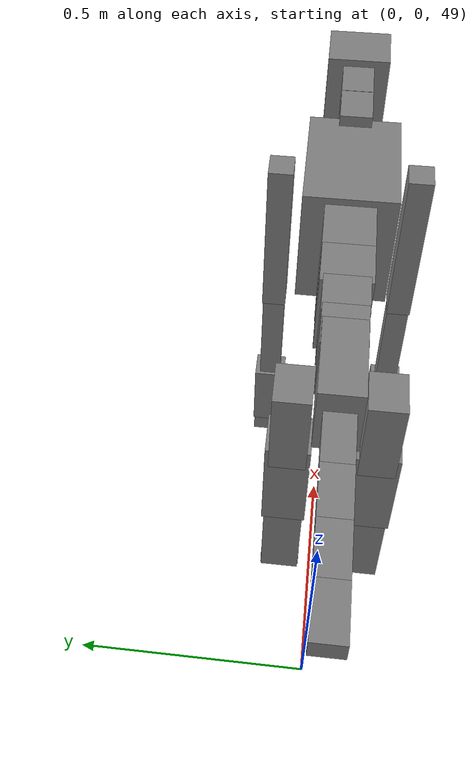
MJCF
<mujoco model="dog">

    <default>
        <joint armature="0.02" stiffness="1" damping="0.2" limited="true"/>
        <geom condim="3" friction="1 0.05 0.05" margin="0.01"/>
        <motor ctrllimited="true" ctrlrange="-1.0 1.0" forcelimited="true" gear="50"/>
    </default>

    <compiler inertiafromgeom="true" angle="radian"/>

    <option timestep="0.016" iterations="50" tolerance="1e-10" solver="Newton" jacobian="dense" cone="pyramidal"/>

    <size nconmax="20000" njmax="60000" nstack="5000000"/>
    <visual>
        <map force="0.1" zfar="30"/>
        <rgba haze="0.15 0.25 0.35 1"/>
        <quality shadowsize="2048"/>
        <global offwidth="800" offheight="800"/>
    </visual>

    <asset>
        <texture type="skybox" builtin="gradient" rgb1="0.3 0.5 0.7" rgb2="0 0 0" width="512" height="512"/>
        <texture name="texplane" type="2d" builtin="checker" rgb1=".2 .3 .4" rgb2=".1 0.15 0.2" width="512" height="512"
                 mark="cross" markrgb=".8 .8 .8"/>
        <texture name="texgeom" type="cube" builtin="flat" mark="cross" width="127" height="1278" rgb1="0.8 0.6 0.4"
                 rgb2="0.8 0.6 0.4" markrgb="1 1 1" random="0.01"/>

        <material name="matplane" reflectance="0.3" texture="texplane" texrepeat="1 1" texuniform="true"/>
        <material name="matgeom" texture="texgeom" texuniform="true" rgba="0.8 0.6 .4 1"/>
    </asset>

    <worldbody>
        <geom name="floor" pos="0 0 0" size="0 0 .25" type="plane" material="matplane" condim="3"/>

        <light directional="false" diffuse=".2 .2 .2" specular="0 0 0" pos="0 0 5" dir="0 0 -1" castshadow="false"/>
        <light mode="targetbodycom" target="torso" directional="false" diffuse=".8 .8 .8" specular="0.3 0.3 0.3"
               pos="0 0 4.0" dir="0 0 -1"/>

        <body name="root" pos="0 0 50">
            <freejoint name="root_1"/>
            <geom type="box" pos="0 0 -0.02" size="0.0774  0.0358  0.063" density="2030"/>

            <body name="spine1" pos="0.054 0 0">
                <joint name="spine1_y" axis="0 1 0" range="0 0.7" limited="true"/>
                <geom type="box" pos="0.02375 0 -0.03" size="0.04375  0.0375  0.05985" density="2030"/>

                <body name="spine2" pos="0.0612 0 0">
                    <joint name="spine2_y" axis="0 1 0" range="-0.15 0.15" limited="true"/>
                    <geom type="box" pos="0.03555  0  -0.04" size="0.04055  0.039  0.06615" density="2030"/>

                    <body name="spine3" pos="0.0730 0 0">
                        <joint name="spine3_y" axis="0 1 0" range="-0.15 0.15" limited="true"/>
                        <geom type="box" pos="0.03555  0  -0.057" size="0.04555  0.0445  0.081" density="2030"/>

                        <body name="spine4" pos="0.0780 0 0">
                            <joint name="spine4_y" axis="0 1 0" range="-0.15 0.15" limited="true"/>
                            <geom type="box" pos="0.05265  0  -0.07" size="0.05265  0.045  0.09135" density="2030"/>

                            <body name="torso" pos="0.1082 0 0">
                                <joint name="torso_y" axis="0 1 0" range="-0.15 0.15" limited="true"/>
                                <geom type="box" pos="0.11925  0  -0.085" size="0.11925  0.085  0.11745"
                                      density="2030"/>

                                <body name="neck1" pos="0.2160  0   0.0180">
                                    <joint name="neck1_y" axis="0 1 0" range="-1.2  -1" limited="true"/>
                                    <geom type="box" pos="0.0423  0  0" size="0.0423  0.03  0.036" density="2325"/>

                                    <body name="neck2" pos="0.0853  0  0">
                                        <joint name="neck2_y" axis="0 1 0" range="0.1  0" limited="true"/>
                                        <geom type="box" pos="0.0423  0  0" size="0.0423  0.03  0.036" density="2325"/>

                                        <body name="head" pos="0.0853  0  0">
                                            <joint name="head_y" axis="0 1 0" range="-0.3  -0.2" limited="true"/>
                                            <geom type="box" pos="0.0531  0  -0.055" size="0.0531  0.06  0.1044"
                                                  density="4030"/>

                                        </body>
                                    </body>
                                </body>

                                <body name="front_shoulder" pos="0.156  0   -0.0480">
                                    <joint name="front_shoulder_y" axis="0 1 0" range="-1 1.5" limited="true"/>
                                    <geom type="box" pos="0 0.13 -0.1425" size="0.0280  0.0239  0.1691" density="1158"/>
                                    <geom type="box" pos="0 -0.13 -0.1425" size="0.0280  0.0239  0.1691"
                                          density="1158"/>

                                    <body name="front_elbow" pos="0  0  -0.2849">
                                        <joint name="front_elbow_y" axis="0 1 0" range="-2 0" limited="true"/>
                                        <geom type="box" pos="0 0.13 -0.1315" size="0.0219  0.0224  0.1315"
                                              density="1081"/>
                                        <geom type="box" pos="0 -0.13 -0.1315" size="0.0219  0.0224  0.1315"
                                              density="1081"/>

                                        <body name="front_wrist" pos="0  0  -0.2630">
                                            <joint name="front_wrist_y" axis="0 1 0" range="-0.2 0" limited="true"/>
                                            <geom type="box" pos="0 0.13 -0.0656" size="0.0291  0.0323  0.0787"
                                                  density="1664"/>
                                            <geom type="box" pos="0 -0.13 -0.0656" size="0.0291  0.0323  0.0787"
                                                  density="1664"/>

                                            <body name="front_finger_end" pos="0  0  -0.1312">
                                                <joint name="front_finger_y" axis="0 1 0" range="-0.4 1"
                                                       limited="true"/>
                                                <geom type="box" pos="0.0304  0.13  -0.0204"
                                                      size="0.0557  0.0304  0.0354" density="1515"/>
                                                <geom type="box" pos="0.0304  -0.13  -0.0204"
                                                      size="0.0557  0.0304  0.0354" density="1515"/>

                                            </body>

                                        </body>
                                    </body>
                                </body>

                            </body>
                        </body>
                    </body>
                </body>
            </body>

            <body name="back_hip" pos="-0.03 0 -0.018">
                <joint name="back_hip_y" axis="0 1 0" range="-1.5 0.3" limited="true"/>
                <geom type="box" pos="0 0.07 -0.0574" size="0.0380  0.0298  0.0802" density="1154"/>
                <geom type="box" pos="0 -0.07 -0.0574" size="0.0380  0.0298  0.0802" density="1154"/>

                <body name="back_knee" pos="0  0  -0.1148">
                    <joint name="back_knee_y" axis="0 1 0" range="0 2.8" limited="true"/>
                    <geom type="box" pos="0 0.07 -0.0757" size="0.0364  0.0359  0.0912" density="1227"/>
                    <geom type="box" pos="0 -0.07 -0.0757" size="0.0364  0.0359  0.0912" density="1227"/>

                    <body name="back_ankle" pos="0  0  -0.1514">
                        <joint name="back_ankle_y" axis="0 1 0" range="-2.2 0" limited="true"/>
                        <geom type="box" pos="0 0.07 -0.0809" size="0.0323  0.0323  0.0921" density="1284"/>
                        <geom type="box" pos="0 -0.07 -0.0809" size="0.0323  0.0323  0.0921" density="1284"/>

                        <body name="back_toe_end" pos="0  0  -0.1618">
                            <joint name="back_toe_y" axis="0 1 0" range="-0.4 1" limited="true"/>
                            <geom type="box" pos="0.0331  0.07  0.0016" size="0.0607  0.0331  0.0134" density="1515"/>
                            <geom type="box" pos="0.0331  -0.07  0.0016" size="0.0607  0.0331  0.0134" density="1515"/>

                        </body>
                    </body>
                </body>
            </body>

            <body name="tail1" pos="-0.074 0 -0.006">
                <joint name="tail1_y" axis="0 1 0" range="-0.2 0.2" limited="true"/>
                <geom type="box" pos="-0.0536  0  0" size="0.045  0.025  0.0175" density="1587"/>

                <body name="tail2" pos="-0.09 0 0">
                    <joint name="tail2_y" axis="0 1 0" range="-0.2 0.2" limited="true"/>
                    <geom type="box" pos="-0.0536  0  0" size="0.045  0.025  0.0175" density="1587"/>

                    <body name="tail3" pos="-0.09 0 0">
                        <joint name="tail3_y" axis="0 1 0" range="-0.2 0.2" limited="true"/>
                        <geom type="box" pos="-0.0536  0  0" size="0.045  0.025  0.0175" density="1587"/>

                        <body name="tail4" pos="-0.09 0 0">
                            <joint name="tail4_y" axis="0 1 0" range="-0.2 0.2" limited="true"/>
                            <geom type="box" pos="-0.0536  0  0" size="0.045  0.025  0.0175" density="1587"/>

                        </body>
                    </body>
                </body>
            </body>
        </body>
    </worldbody>

    <actuator>
        <motor joint="spine1_y" forcerange="-150 150     "/>
        <motor joint="spine2_y" forcerange="-150 150     "/>
        <motor joint="spine3_y" forcerange="-150 150     "/>
        <motor joint="spine4_y" forcerange="-150 150     "/>
        <motor joint="torso_y" forcerange="-150 150     "/>
        <motor joint="neck1_y" forcerange="-100 100       "/>
        <motor joint="neck2_y" forcerange="-100 100       "/>
        <motor joint="head_y" forcerange="-150 150       "/>
        <motor joint="front_shoulder_y" forcerange="-105.89 153.41"/>
        <motor joint="front_elbow_y" forcerange="-110.35 152.22"/>
        <motor joint="front_wrist_y" forcerange="-141.28 117.25"/>
        <motor joint="front_finger_y" forcerange="-77.53 44.50"/>
        <motor joint="back_hip_y" forcerange="-357.39 239.53"/>
        <motor joint="back_knee_y" forcerange="-394.99 327.50"/>
        <motor joint="back_angle_y" forcerange="-199.27 217.30"/>
        <motor joint="back_toe_y" forcerange="-116.74 68.12"/>
        <motor joint="tail1_y" forcerange="-50 50     "/>
        <motor joint="tail2_y" forcerange="-50 50     "/>
        <motor joint="tail3_y" forcerange="-50 50     "/>
        <motor joint="tail4_y" forcerange="-50 50     "/>
    </actuator>
</mujoco>
